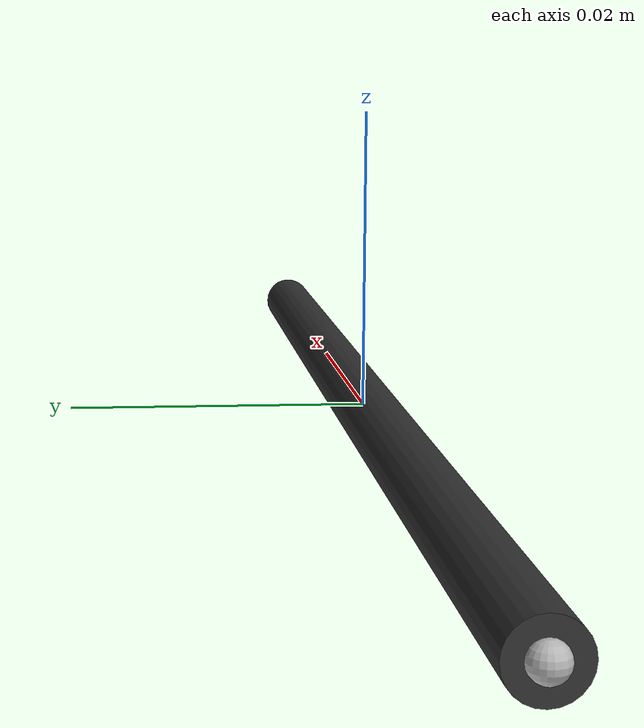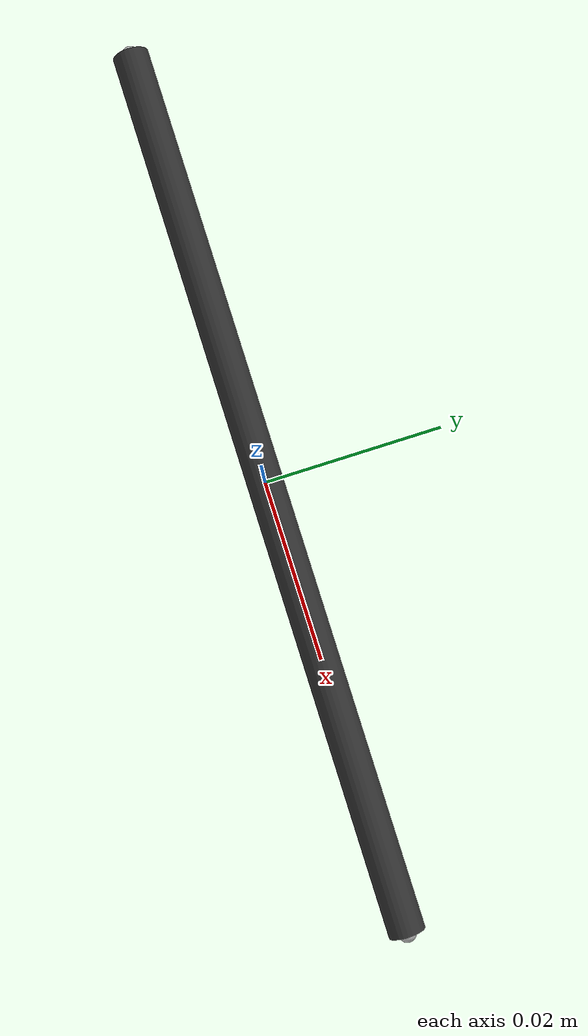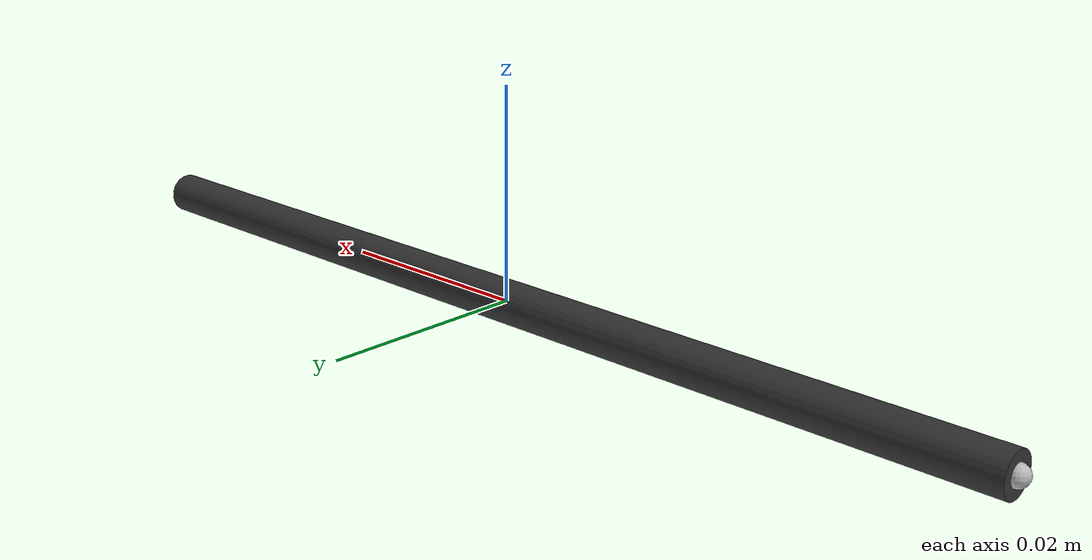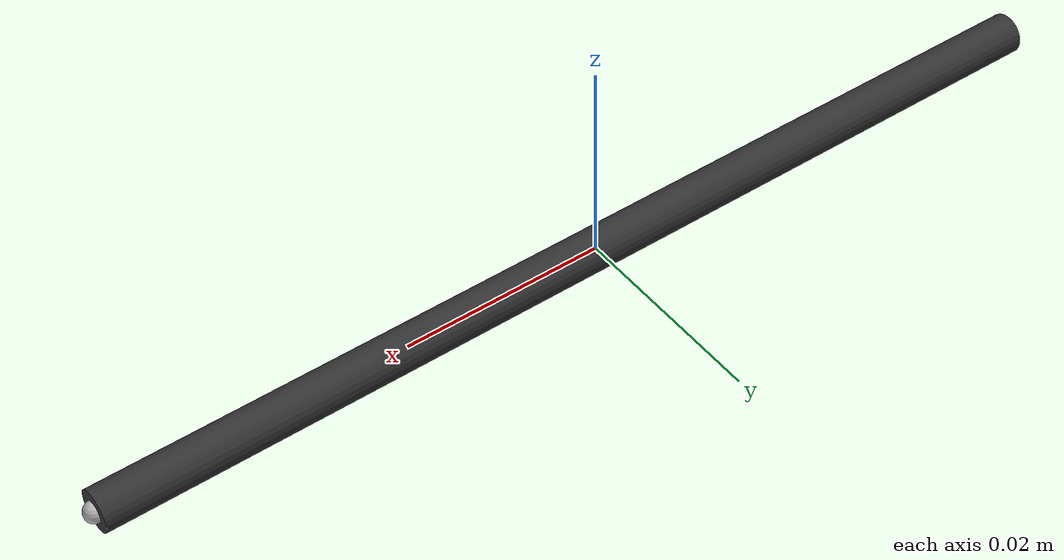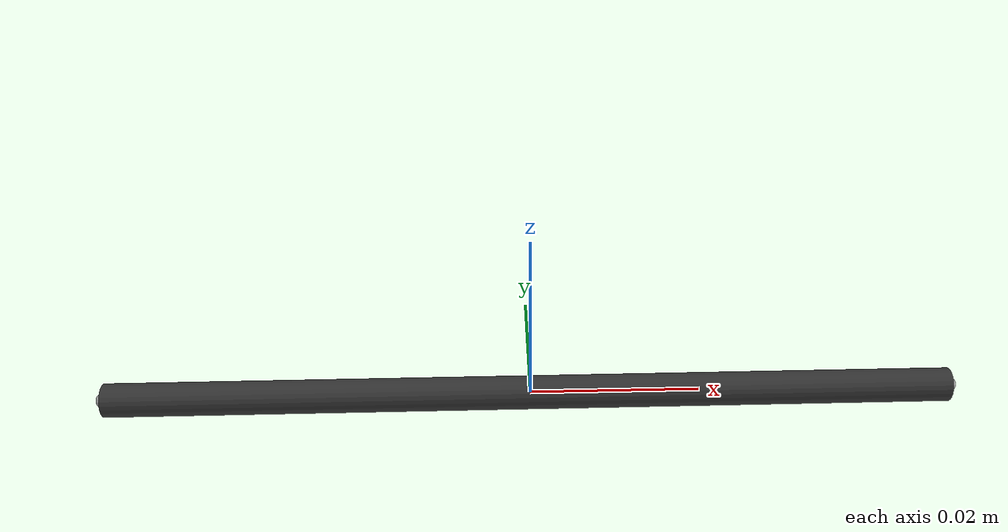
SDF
<?xml version="1.0" ?>
<sdf version="1.8">
  <model name="small_segment">
    <link name="segment_link">
      <inertial>
        <mass>0.00001</mass>
        <pose>0 0 0 0 1.5708 0</pose>
        <inertia>
            <ixx>1e-9</ixx>
            <iyy>1e-9</iyy>
            <izz>1e-9</izz>
        </inertia>
      </inertial>
      <visual name="segment_visual">
        <pose>0 0 0 0 1.5708 0</pose>
        <geometry>
          <cylinder>
            <radius>0.002</radius>
            <length>0.1</length> </cylinder>
        </geometry>
        <material>
          <ambient>0.2 0.2 0.2 1</ambient>
          <diffuse>0.2 0.2 0.2 1</diffuse>
          <specular>0.0 0.0 0.0 1</specular>
          <emissive>0.0 0.0 0.0 1</emissive>
        </material>
      </visual>
      <collision name="segment_collision">
        <pose>0 0 0 0 1.5708 0</pose>
        <geometry>
          <cylinder>
            <radius>0.002</radius>
            <length>0.1</length>
          </cylinder>
        </geometry>
      </collision>
    </link>
    <link name="segment_start">
        <pose>-0.05 0 0 0 0 0</pose>
        <inertial>
          <mass>1e-9</mass>
          <inertia>
            <ixx>1e-9</ixx>
            <iyy>1e-9</iyy>
            <izz>1e-9</izz>
        </inertia>
        </inertial>
        <visual name="start_visual"><geometry><sphere><radius>0.001</radius></sphere></geometry></visual>
        <collision name="start_collision"><geometry><sphere><radius>0.001</radius></sphere></geometry></collision>
    </link>
    <joint name="start_joint" type="fixed">
        <parent>segment_link</parent>
        <child>segment_start</child>
    </joint>
    <link name="segment_end">
        <pose>0.05 0 0 0 0 0</pose>
        <inertial>
          <mass>1e-9</mass>
          <inertia>
            <ixx>1e-9</ixx>
            <iyy>1e-9</iyy>
            <izz>1e-9</izz>
        </inertia>
        </inertial>
        <visual name="end_visual"><geometry><sphere><radius>0.001</radius></sphere></geometry></visual>
        <collision name="end_collision"><geometry><sphere><radius>0.001</radius></sphere></geometry></collision>
    </link>
    <joint name="end_joint" type="fixed">
        <parent>segment_end</parent>
        <child>segment_link</child>
    </joint>
  </model>
</sdf>
